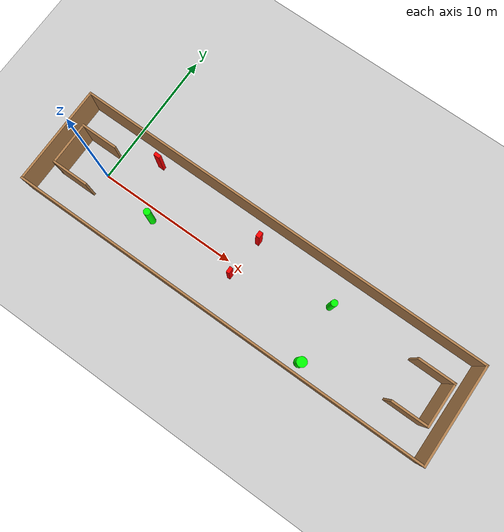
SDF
<sdf version="1.7">
 <world name="default">
  <light name="sun" type="directional">
   <pose>0 0 10 0 -0 0</pose>
   <diffuse>0.8 0.8 0.8 1</diffuse>
   <specular>0.2 0.2 0.2 1</specular>
   <attenuation>
    <range>1000</range>
    <constant>0.9</constant>
    <linear>0.01</linear>
    <quadratic>0.001</quadratic>
   </attenuation>
   <direction>-0.5 0.1 -0.9</direction>
   <spot><inner_angle>0</inner_angle><outer_angle>0</outer_angle><falloff>0</falloff></spot>
  </light>
  <model name="ground_plane">
   <static>1</static>
   <link name="link">
    <collision name="collision">
     <geometry><plane><normal>0 0 1</normal><size>100 100</size></plane></geometry>
     <surface>
      <contact><collide_bitmask>65535</collide_bitmask></contact>
      <friction><ode><mu>100</mu><mu2>50</mu2></ode></friction>
     </surface>
    </collision>
    <visual name="visual">
     <cast_shadows>0</cast_shadows>
     <geometry><plane><normal>0 0 1</normal><size>100 100</size></plane></geometry>
     <material>
      <script><uri>file://media/materials/scripts/gazebo.material</uri><name>Gazebo/Grey</name></script>
     </material>
    </visual>
   </link>
  </model>
  <gravity>0 0 -9.8</gravity>
  <magnetic_field>6e-06 2.3e-05 -4.2e-05</magnetic_field>
  <atmosphere type="adiabatic"/>
  <physics type="ode">
   <max_step_size>0.001</max_step_size>
   <real_time_factor>1</real_time_factor>
   <real_time_update_rate>1000</real_time_update_rate>
  </physics>
  <scene><ambient>0.4 0.4 0.4 1</ambient><background>0.7 0.7 0.7 1</background><shadows>1</shadows></scene>
  <spherical_coordinates>
   <surface_model>EARTH_WGS84</surface_model>
   <latitude_deg>0</latitude_deg>
   <longitude_deg>0</longitude_deg>
   <elevation>0</elevation>
   <heading_deg>0</heading_deg>
  </spherical_coordinates>
  <model name="my_base_walls">
   <link name="Wall_0">
    <collision name="Wall_0_Collision">
     <geometry><box><size>7.15 0.15 2.5</size></box></geometry>
     <pose>0 0 1.25 0 -0 0</pose>
    </collision>
    <visual name="Wall_0_Visual">
     <pose>0 0 1.25 0 -0 0</pose>
     <geometry><box><size>7.15 0.15 2.5</size></box></geometry>
     <material>
      <script><uri>file://media/materials/scripts/gazebo.material</uri><name>Gazebo/Wood</name></script>
      <ambient>1 1 1 1</ambient>
     </material>
     <meta><layer>0</layer></meta>
    </visual>
    <pose>-15 0 0 0 -0 1.5708</pose>
   </link>
   <link name="Wall_10">
    <collision name="Wall_10_Collision">
     <geometry><box><size>2.65 0.15 2.5</size></box></geometry>
     <pose>0 0 1.25 0 -0 0</pose>
    </collision>
    <visual name="Wall_10_Visual">
     <pose>0 0 1.25 0 -0 0</pose>
     <geometry><box><size>2.65 0.15 2.5</size></box></geometry>
     <material>
      <script><uri>file://media/materials/scripts/gazebo.material</uri><name>Gazebo/Wood</name></script>
      <ambient>1 1 1 1</ambient>
     </material>
     <meta><layer>0</layer></meta>
    </visual>
    <pose>-12.75 -1.5 0 0 -0 0</pose>
   </link>
   <link name="Wall_12">
    <collision name="Wall_12_Collision">
     <geometry><box><size>2.65 0.15 2.5</size></box></geometry>
     <pose>0 0 1.25 0 -0 0</pose>
    </collision>
    <visual name="Wall_12_Visual">
     <pose>0 0 1.25 0 -0 0</pose>
     <geometry><box><size>2.65 0.15 2.5</size></box></geometry>
     <material>
      <script><uri>file://media/materials/scripts/gazebo.material</uri><name>Gazebo/Wood</name></script>
      <ambient>1 1 1 1</ambient>
     </material>
     <meta><layer>0</layer></meta>
    </visual>
    <pose>-12.75 1.5 0 0 -0 0</pose>
   </link>
   <link name="Wall_14">
    <collision name="Wall_14_Collision">
     <geometry><box><size>3.15 0.15 2.5</size></box></geometry>
     <pose>0 0 1.25 0 -0 0</pose>
    </collision>
    <visual name="Wall_14_Visual">
     <pose>0 0 1.25 0 -0 0</pose>
     <geometry><box><size>3.15 0.15 2.5</size></box></geometry>
     <material>
      <script><uri>file://media/materials/scripts/gazebo.material</uri><name>Gazebo/Wood</name></script>
      <ambient>1 1 1 1</ambient>
     </material>
     <meta><layer>0</layer></meta>
    </visual>
    <pose>14 0 0 0 -0 -1.5708</pose>
   </link>
   <link name="Wall_15">
    <collision name="Wall_15_Collision">
     <geometry><box><size>2.65 0.15 2.5</size></box></geometry>
     <pose>0 0 1.25 0 -0 0</pose>
    </collision>
    <visual name="Wall_15_Visual">
     <pose>0 0 1.25 0 -0 0</pose>
     <geometry><box><size>2.65 0.15 2.5</size></box></geometry>
     <material>
      <script><uri>file://media/materials/scripts/gazebo.material</uri><name>Gazebo/Wood</name></script>
      <ambient>1 1 1 1</ambient>
     </material>
     <meta><layer>0</layer></meta>
    </visual>
    <pose>12.75 -1.5 0 0 -0 3.14159</pose>
   </link>
   <link name="Wall_17">
    <collision name="Wall_17_Collision">
     <geometry><box><size>2.65 0.15 2.5</size></box></geometry>
     <pose>0 0 1.25 0 -0 0</pose>
    </collision>
    <visual name="Wall_17_Visual">
     <pose>0 0 1.25 0 -0 0</pose>
     <geometry><box><size>2.65 0.15 2.5</size></box></geometry>
     <material>
      <script><uri>file://media/materials/scripts/gazebo.material</uri><name>Gazebo/Wood</name></script>
      <ambient>1 1 1 1</ambient>
     </material>
     <meta><layer>0</layer></meta>
    </visual>
    <pose>12.75 1.5 0 0 -0 3.14159</pose>
   </link>
   <link name="Wall_2">
    <collision name="Wall_2_Collision">
     <geometry><box><size>30.15 0.15 2.5</size></box></geometry>
     <pose>0 0 1.25 0 -0 0</pose>
    </collision>
    <visual name="Wall_2_Visual">
     <pose>0 0 1.25 0 -0 0</pose>
     <geometry><box><size>30.15 0.15 2.5</size></box></geometry>
     <material>
      <script><uri>file://media/materials/scripts/gazebo.material</uri><name>Gazebo/Wood</name></script>
      <ambient>1 1 1 1</ambient>
     </material>
     <meta><layer>0</layer></meta>
    </visual>
    <pose>-0 -3.5 0 0 -0 0</pose>
   </link>
   <link name="Wall_4">
    <collision name="Wall_4_Collision">
     <geometry><box><size>30.15 0.15 2.5</size></box></geometry>
     <pose>0 0 1.25 0 -0 0</pose>
    </collision>
    <visual name="Wall_4_Visual">
     <pose>0 0 1.25 0 -0 0</pose>
     <geometry><box><size>30.15 0.15 2.5</size></box></geometry>
     <material>
      <script><uri>file://media/materials/scripts/gazebo.material</uri><name>Gazebo/Wood</name></script>
      <ambient>1 1 1 1</ambient>
     </material>
     <meta><layer>0</layer></meta>
    </visual>
    <pose>-0 3.5 0 0 -0 0</pose>
   </link>
   <link name="Wall_6">
    <collision name="Wall_6_Collision">
     <geometry><box><size>7.15 0.15 2.5</size></box></geometry>
     <pose>0 0 1.25 0 -0 0</pose>
    </collision>
    <visual name="Wall_6_Visual">
     <pose>0 0 1.25 0 -0 0</pose>
     <geometry><box><size>7.15 0.15 2.5</size></box></geometry>
     <material>
      <script><uri>file://media/materials/scripts/gazebo.material</uri><name>Gazebo/Wood</name></script>
      <ambient>1 1 1 1</ambient>
     </material>
     <meta><layer>0</layer></meta>
    </visual>
    <pose>15 0 0 0 -0 -1.5708</pose>
   </link>
   <link name="Wall_9">
    <collision name="Wall_9_Collision">
     <geometry><box><size>3.15 0.15 2.5</size></box></geometry>
     <pose>0 0 1.25 0 -0 0</pose>
    </collision>
    <visual name="Wall_9_Visual">
     <pose>0 0 1.25 0 -0 0</pose>
     <geometry><box><size>3.15 0.15 2.5</size></box></geometry>
     <material>
      <script><uri>file://media/materials/scripts/gazebo.material</uri><name>Gazebo/Wood</name></script>
      <ambient>1 1 1 1</ambient>
     </material>
     <meta><layer>0</layer></meta>
    </visual>
    <pose>-14 0 0 0 -0 -1.5708</pose>
   </link>
   <static>1</static>
   <pose>11.5 0 0 0 -0 0</pose>
  </model>
  <model name="cylinder1">
   <static>1</static>
   <link name="link">
    <inertial>
     <mass>1</mass>
     <inertia><ixx>0.5</ixx><ixy>0</ixy><ixz>0</ixz><iyy>0.5</iyy><iyz>0</iyz><izz>1</izz></inertia>
    </inertial>
    <collision name="collision">
     <geometry><cylinder><radius>0.2265421665717854</radius><length>2.5</length></cylinder></geometry>
    </collision>
    <visual name="visual">
     <geometry><cylinder><radius>0.2265421665717854</radius><length>2.5</length></cylinder></geometry>
     <material>
      <ambient>0 1 0 1</ambient>
      <diffuse>0 1 0 1</diffuse>
      <specular>0.1 0.1 0.1 1</specular>
      <emissive>0 0 0 0</emissive>
     </material>
    </visual>
   </link>
   <pose>17.00895575292856 1.3295383088594956 1.25 0 0 0</pose>
  </model>
  <model name="cylinder2">
   <static>1</static>
   <link name="link">
    <inertial>
     <mass>1</mass>
     <inertia><ixx>0.5</ixx><ixy>0</ixy><ixz>0</ixz><iyy>0.5</iyy><iyz>0</iyz><izz>1</izz></inertia>
    </inertial>
    <collision name="collision">
     <geometry><cylinder><radius>0.3400948906795648</radius><length>2.5</length></cylinder></geometry>
    </collision>
    <visual name="visual">
     <geometry><cylinder><radius>0.3400948906795648</radius><length>2.5</length></cylinder></geometry>
     <material>
      <ambient>0 1 0 1</ambient>
      <diffuse>0 1 0 1</diffuse>
      <specular>0.1 0.1 0.1 1</specular>
      <emissive>0 0 0 0</emissive>
     </material>
    </visual>
   </link>
   <pose>17.3768826104111 -2.7076823898905027 1.25 0 0 0</pose>
  </model>
  <model name="cylinder3">
   <static>1</static>
   <link name="link">
    <inertial>
     <mass>1</mass>
     <inertia><ixx>0.5</ixx><ixy>0</ixy><ixz>0</ixz><iyy>0.5</iyy><iyz>0</iyz><izz>1</izz></inertia>
    </inertial>
    <collision name="collision">
     <geometry><cylinder><radius>0.23530500594667664</radius><length>2.5</length></cylinder></geometry>
    </collision>
    <visual name="visual">
     <geometry><cylinder><radius>0.23530500594667664</radius><length>2.5</length></cylinder></geometry>
     <material>
      <ambient>0 1 0 1</ambient>
      <diffuse>0 1 0 1</diffuse>
      <specular>0.1 0.1 0.1 1</specular>
      <emissive>0 0 0 0</emissive>
     </material>
    </visual>
   </link>
   <pose>4.283434105573614 -0.7076472149369222 1.25 0 0 0</pose>
  </model>
  <model name="box1">
   <static>1</static>
   <link name="link">
    <inertial>
     <mass>1</mass>
     <inertia><ixx>0.083</ixx><ixy>0</ixy><ixz>0</ixz><iyy>0.083</iyy><iyz>0</iyz><izz>0.083</izz></inertia>
    </inertial>
    <collision name="collision">
     <geometry><box><size>0.44061786212121157 0.2378072904326835 2.5</size></box></geometry>
    </collision>
    <visual name="visual">
     <geometry><box><size>0.44061786212121157 0.2378072904326835 2.5</size></box></geometry>
     <material>
      <ambient>1 0 0 1</ambient>
      <diffuse>1 0 0 1</diffuse>
      <specular>0.1 0.1 0.1 1</specular>
      <emissive>0 0 0 0</emissive>
     </material>
    </visual>
    <sensor name="my_contact" type="contact">
     <contact><collision>box_collision</collision><topic>__default_topic__</topic></contact>
    </sensor>
   </link>
   <pose>2.5810684981290315 2.633768736630177 1.25 0 0 0</pose>
  </model>
  <model name="box2">
   <static>1</static>
   <link name="link">
    <inertial>
     <mass>1</mass>
     <inertia><ixx>0.083</ixx><ixy>0</ixy><ixz>0</ixz><iyy>0.083</iyy><iyz>0</iyz><izz>0.083</izz></inertia>
    </inertial>
    <collision name="collision">
     <geometry><box><size>0.23340027310565664 0.41479141262238883 2.5</size></box></geometry>
    </collision>
    <visual name="visual">
     <geometry><box><size>0.23340027310565664 0.41479141262238883 2.5</size></box></geometry>
     <material>
      <ambient>1 0 0 1</ambient>
      <diffuse>1 0 0 1</diffuse>
      <specular>0.1 0.1 0.1 1</specular>
      <emissive>0 0 0 0</emissive>
     </material>
    </visual>
    <sensor name="my_contact" type="contact">
     <contact><collision>box_collision</collision><topic>__default_topic__</topic></contact>
    </sensor>
   </link>
   <pose>10.63334787537971 -0.7092061542676875 1.25 0 0 0</pose>
  </model>
  <model name="box3">
   <static>1</static>
   <link name="link">
    <inertial>
     <mass>1</mass>
     <inertia><ixx>0.083</ixx><ixy>0</ixy><ixz>0</ixz><iyy>0.083</iyy><iyz>0</iyz><izz>0.083</izz></inertia>
    </inertial>
    <collision name="collision">
     <geometry><box><size>0.2878468597606337 0.41382749495152066 2.5</size></box></geometry>
    </collision>
    <visual name="visual">
     <geometry><box><size>0.2878468597606337 0.41382749495152066 2.5</size></box></geometry>
     <material>
      <ambient>1 0 0 1</ambient>
      <diffuse>1 0 0 1</diffuse>
      <specular>0.1 0.1 0.1 1</specular>
      <emissive>0 0 0 0</emissive>
     </material>
    </visual>
    <sensor name="my_contact" type="contact">
     <contact><collision>box_collision</collision><topic>__default_topic__</topic></contact>
    </sensor>
   </link>
   <pose>10.840236969700607 2.1723887056389524 1.25 0 0 0</pose>
  </model>
 </world>
</sdf>
